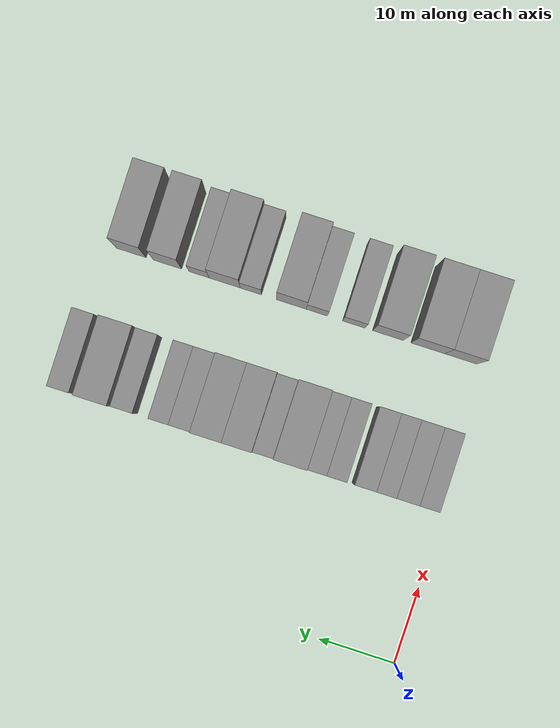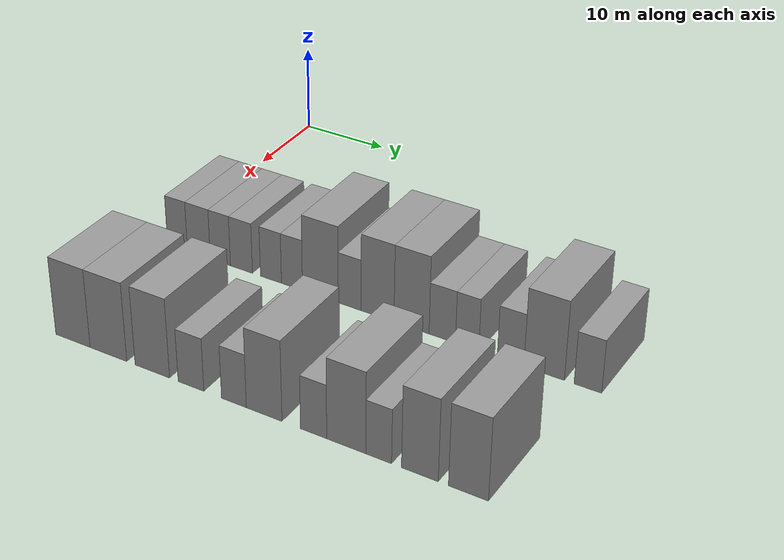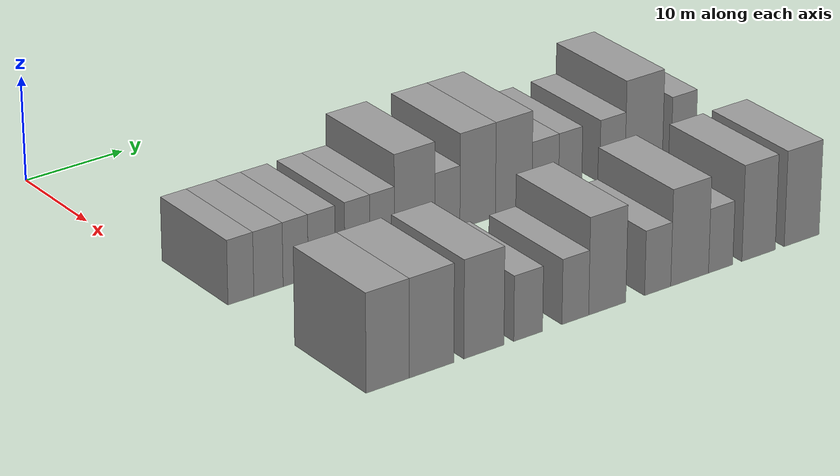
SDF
<sdf version="1.6">
 <world name="default">
  <model name="building_51">
   <static>1</static>
   <pose>25.0000 2.5211 0 0.000000 0.000000 0.000000</pose>
   <link name="link">
    <pose>0 0 3.00 0 0 0</pose>
    <collision name="collision"><geometry><box><size>10.0000 2.5867 6.0000</size></box></geometry></collision>
    <visual name="visual">
     <cast_shadows>0</cast_shadows>
     <geometry><box><size>10.0000 2.5867 6.0000</size></box></geometry>
     <material>
      <script>
       <uri>model://grey_wall/materials/scripts</uri>
       <uri>model://grey_wall/materials/textures</uri>
       <name>vrc/grey_wall</name>
      </script>
     </material>
    </visual>
   </link>
  </model>
  <model name="building_52">
   <static>1</static>
   <pose>25.0000 5.2859 0 0.000000 0.000000 0.000000</pose>
   <link name="link">
    <pose>0 0 3.00 0 0 0</pose>
    <collision name="collision"><geometry><box><size>10.0000 2.9429 6.0000</size></box></geometry></collision>
    <visual name="visual">
     <cast_shadows>0</cast_shadows>
     <geometry><box><size>10.0000 2.9429 6.0000</size></box></geometry>
     <material>
      <script>
       <uri>model://grey_wall/materials/scripts</uri>
       <uri>model://grey_wall/materials/textures</uri>
       <name>vrc/grey_wall</name>
      </script>
     </material>
    </visual>
   </link>
  </model>
  <model name="building_53">
   <static>1</static>
   <pose>25.0000 8.0348 0 0.000000 0.000000 0.000000</pose>
   <link name="link">
    <pose>0 0 3.00 0 0 0</pose>
    <collision name="collision"><geometry><box><size>10.0000 2.5548 6.0000</size></box></geometry></collision>
    <visual name="visual">
     <cast_shadows>0</cast_shadows>
     <geometry><box><size>10.0000 2.5548 6.0000</size></box></geometry>
     <material>
      <script>
       <uri>model://grey_wall/materials/scripts</uri>
       <uri>model://grey_wall/materials/textures</uri>
       <name>vrc/grey_wall</name>
      </script>
     </material>
    </visual>
   </link>
  </model>
  <model name="building_54">
   <static>1</static>
   <pose>25.0000 10.6931 0 0.000000 0.000000 0.000000</pose>
   <link name="link">
    <pose>0 0 3.00 0 0 0</pose>
    <collision name="collision"><geometry><box><size>10.0000 2.7617 6.0000</size></box></geometry></collision>
    <visual name="visual">
     <cast_shadows>0</cast_shadows>
     <geometry><box><size>10.0000 2.7617 6.0000</size></box></geometry>
     <material>
      <script>
       <uri>model://grey_wall/materials/scripts</uri>
       <uri>model://grey_wall/materials/textures</uri>
       <name>vrc/grey_wall</name>
      </script>
     </material>
    </visual>
   </link>
  </model>
  <model name="building_55">
   <static>1</static>
   <pose>25.0000 14.3630 0 0.000000 0.000000 0.000000</pose>
   <link name="link">
    <pose>0 0 3.00 0 0 0</pose>
    <collision name="collision"><geometry><box><size>10.0000 2.5780 6.0000</size></box></geometry></collision>
    <visual name="visual">
     <cast_shadows>0</cast_shadows>
     <geometry><box><size>10.0000 2.5780 6.0000</size></box></geometry>
     <material>
      <script>
       <uri>model://grey_wall/materials/scripts</uri>
       <uri>model://grey_wall/materials/textures</uri>
       <name>vrc/grey_wall</name>
      </script>
     </material>
    </visual>
   </link>
  </model>
  <model name="building_56">
   <static>1</static>
   <pose>25.0000 16.9307 0 0.000000 0.000000 0.000000</pose>
   <link name="link">
    <pose>0 0 3.00 0 0 0</pose>
    <collision name="collision"><geometry><box><size>10.0000 2.5575 6.0000</size></box></geometry></collision>
    <visual name="visual">
     <cast_shadows>0</cast_shadows>
     <geometry><box><size>10.0000 2.5575 6.0000</size></box></geometry>
     <material>
      <script>
       <uri>model://grey_wall/materials/scripts</uri>
       <uri>model://grey_wall/materials/textures</uri>
       <name>vrc/grey_wall</name>
      </script>
     </material>
    </visual>
   </link>
  </model>
  <model name="building_57">
   <static>1</static>
   <pose>25.0000 20.3381 0 0.000000 0.000000 0.000000</pose>
   <link name="link">
    <pose>0 0 4.50 0 0 0</pose>
    <collision name="collision"><geometry><box><size>10.0000 4.2573 9.0000</size></box></geometry></collision>
    <visual name="visual">
     <cast_shadows>0</cast_shadows>
     <geometry><box><size>10.0000 4.2573 9.0000</size></box></geometry>
     <material>
      <script>
       <uri>model://grey_wall/materials/scripts</uri>
       <uri>model://grey_wall/materials/textures</uri>
       <name>vrc/grey_wall</name>
      </script>
     </material>
    </visual>
   </link>
  </model>
  <model name="building_58">
   <static>1</static>
   <pose>25.0000 23.8044 0 0.000000 0.000000 0.000000</pose>
   <link name="link">
    <pose>0 0 3.00 0 0 0</pose>
    <collision name="collision"><geometry><box><size>10.0000 2.6753 6.0000</size></box></geometry></collision>
    <visual name="visual">
     <cast_shadows>0</cast_shadows>
     <geometry><box><size>10.0000 2.6753 6.0000</size></box></geometry>
     <material>
      <script>
       <uri>model://grey_wall/materials/scripts</uri>
       <uri>model://grey_wall/materials/textures</uri>
       <name>vrc/grey_wall</name>
      </script>
     </material>
    </visual>
   </link>
  </model>
  <model name="building_59">
   <static>1</static>
   <pose>25.0000 27.0463 0 0.000000 0.000000 0.000000</pose>
   <link name="link">
    <pose>0 0 4.50 0 0 0</pose>
    <collision name="collision"><geometry><box><size>10.0000 3.8084 9.0000</size></box></geometry></collision>
    <visual name="visual">
     <cast_shadows>0</cast_shadows>
     <geometry><box><size>10.0000 3.8084 9.0000</size></box></geometry>
     <material>
      <script>
       <uri>model://grey_wall/materials/scripts</uri>
       <uri>model://grey_wall/materials/textures</uri>
       <name>vrc/grey_wall</name>
      </script>
     </material>
    </visual>
   </link>
  </model>
  <model name="building_60">
   <static>1</static>
   <pose>25.0000 30.9285 0 0.000000 0.000000 0.000000</pose>
   <link name="link">
    <pose>0 0 4.50 0 0 0</pose>
    <collision name="collision"><geometry><box><size>10.0000 3.9560 9.0000</size></box></geometry></collision>
    <visual name="visual">
     <cast_shadows>0</cast_shadows>
     <geometry><box><size>10.0000 3.9560 9.0000</size></box></geometry>
     <material>
      <script>
       <uri>model://grey_wall/materials/scripts</uri>
       <uri>model://grey_wall/materials/textures</uri>
       <name>vrc/grey_wall</name>
      </script>
     </material>
    </visual>
   </link>
  </model>
  <model name="building_61">
   <static>1</static>
   <pose>25.0000 34.3720 0 0.000000 0.000000 0.000000</pose>
   <link name="link">
    <pose>0 0 3.00 0 0 0</pose>
    <collision name="collision"><geometry><box><size>10.0000 2.9311 6.0000</size></box></geometry></collision>
    <visual name="visual">
     <cast_shadows>0</cast_shadows>
     <geometry><box><size>10.0000 2.9311 6.0000</size></box></geometry>
     <material>
      <script>
       <uri>model://grey_wall/materials/scripts</uri>
       <uri>model://grey_wall/materials/textures</uri>
       <name>vrc/grey_wall</name>
      </script>
     </material>
    </visual>
   </link>
  </model>
  <model name="building_62">
   <static>1</static>
   <pose>25.0000 37.1161 0 0.000000 0.000000 0.000000</pose>
   <link name="link">
    <pose>0 0 3.00 0 0 0</pose>
    <collision name="collision"><geometry><box><size>10.0000 2.5571 6.0000</size></box></geometry></collision>
    <visual name="visual">
     <cast_shadows>0</cast_shadows>
     <geometry><box><size>10.0000 2.5571 6.0000</size></box></geometry>
     <material>
      <script>
       <uri>model://grey_wall/materials/scripts</uri>
       <uri>model://grey_wall/materials/textures</uri>
       <name>vrc/grey_wall</name>
      </script>
     </material>
    </visual>
   </link>
  </model>
  <model name="building_63">
   <static>1</static>
   <pose>25.0000 41.8110 0 0.000000 0.000000 0.000000</pose>
   <link name="link">
    <pose>0 0 3.00 0 0 0</pose>
    <collision name="collision"><geometry><box><size>10.0000 2.8327 6.0000</size></box></geometry></collision>
    <visual name="visual">
     <cast_shadows>0</cast_shadows>
     <geometry><box><size>10.0000 2.8327 6.0000</size></box></geometry>
     <material>
      <script>
       <uri>model://grey_wall/materials/scripts</uri>
       <uri>model://grey_wall/materials/textures</uri>
       <name>vrc/grey_wall</name>
      </script>
     </material>
    </visual>
   </link>
  </model>
  <model name="building_64">
   <static>1</static>
   <pose>25.0000 45.3492 0 0.000000 0.000000 0.000000</pose>
   <link name="link">
    <pose>0 0 4.50 0 0 0</pose>
    <collision name="collision"><geometry><box><size>10.0000 4.2435 9.0000</size></box></geometry></collision>
    <visual name="visual">
     <cast_shadows>0</cast_shadows>
     <geometry><box><size>10.0000 4.2435 9.0000</size></box></geometry>
     <material>
      <script>
       <uri>model://grey_wall/materials/scripts</uri>
       <uri>model://grey_wall/materials/textures</uri>
       <name>vrc/grey_wall</name>
      </script>
     </material>
    </visual>
   </link>
  </model>
  <model name="building_65">
   <static>1</static>
   <pose>25.0000 49.8806 0 0.000000 0.000000 0.000000</pose>
   <link name="link">
    <pose>0 0 3.00 0 0 0</pose>
    <collision name="collision"><geometry><box><size>10.0000 2.8192 6.0000</size></box></geometry></collision>
    <visual name="visual">
     <cast_shadows>0</cast_shadows>
     <geometry><box><size>10.0000 2.8192 6.0000</size></box></geometry>
     <material>
      <script>
       <uri>model://grey_wall/materials/scripts</uri>
       <uri>model://grey_wall/materials/textures</uri>
       <name>vrc/grey_wall</name>
      </script>
     </material>
    </visual>
   </link>
  </model>
  <model name="building_159">
   <static>1</static>
   <pose>44.0000 3.8467 0 0.000000 0.000000 0.000000</pose>
   <link name="link">
    <pose>0 0 4.50 0 0 0</pose>
    <collision name="collision"><geometry><box><size>10.0000 4.2558 9.0000</size></box></geometry></collision>
    <visual name="visual">
     <cast_shadows>0</cast_shadows>
     <geometry><box><size>10.0000 4.2558 9.0000</size></box></geometry>
     <material>
      <script>
       <uri>model://grey_wall/materials/scripts</uri>
       <uri>model://grey_wall/materials/textures</uri>
       <name>vrc/grey_wall</name>
      </script>
     </material>
    </visual>
   </link>
  </model>
  <model name="building_160">
   <static>1</static>
   <pose>44.0000 8.1950 0 0.000000 0.000000 0.000000</pose>
   <link name="link">
    <pose>0 0 4.50 0 0 0</pose>
    <collision name="collision"><geometry><box><size>10.0000 4.4410 9.0000</size></box></geometry></collision>
    <visual name="visual">
     <cast_shadows>0</cast_shadows>
     <geometry><box><size>10.0000 4.4410 9.0000</size></box></geometry>
     <material>
      <script>
       <uri>model://grey_wall/materials/scripts</uri>
       <uri>model://grey_wall/materials/textures</uri>
       <name>vrc/grey_wall</name>
      </script>
     </material>
    </visual>
   </link>
  </model>
  <model name="building_161">
   <static>1</static>
   <pose>44.0000 13.4465 0 0.000000 0.000000 0.000000</pose>
   <link name="link">
    <pose>0 0 4.50 0 0 0</pose>
    <collision name="collision"><geometry><box><size>10.0000 4.0620 9.0000</size></box></geometry></collision>
    <visual name="visual">
     <cast_shadows>0</cast_shadows>
     <geometry><box><size>10.0000 4.0620 9.0000</size></box></geometry>
     <material>
      <script>
       <uri>model://grey_wall/materials/scripts</uri>
       <uri>model://grey_wall/materials/textures</uri>
       <name>vrc/grey_wall</name>
      </script>
     </material>
    </visual>
   </link>
  </model>
  <model name="building_162">
   <static>1</static>
   <pose>44.0000 17.9593 0 0.000000 0.000000 0.000000</pose>
   <link name="link">
    <pose>0 0 3.00 0 0 0</pose>
    <collision name="collision"><geometry><box><size>10.0000 2.9635 6.0000</size></box></geometry></collision>
    <visual name="visual">
     <cast_shadows>0</cast_shadows>
     <geometry><box><size>10.0000 2.9635 6.0000</size></box></geometry>
     <material>
      <script>
       <uri>model://grey_wall/materials/scripts</uri>
       <uri>model://grey_wall/materials/textures</uri>
       <name>vrc/grey_wall</name>
      </script>
     </material>
    </visual>
   </link>
  </model>
  <model name="building_163">
   <static>1</static>
   <pose>44.0000 22.8355 0 0.000000 0.000000 0.000000</pose>
   <link name="link">
    <pose>0 0 3.00 0 0 0</pose>
    <collision name="collision"><geometry><box><size>10.0000 2.7889 6.0000</size></box></geometry></collision>
    <visual name="visual">
     <cast_shadows>0</cast_shadows>
     <geometry><box><size>10.0000 2.7889 6.0000</size></box></geometry>
     <material>
      <script>
       <uri>model://grey_wall/materials/scripts</uri>
       <uri>model://grey_wall/materials/textures</uri>
       <name>vrc/grey_wall</name>
      </script>
     </material>
    </visual>
   </link>
  </model>
  <model name="building_164">
   <static>1</static>
   <pose>44.0000 26.1865 0 0.000000 0.000000 0.000000</pose>
   <link name="link">
    <pose>0 0 4.50 0 0 0</pose>
    <collision name="collision"><geometry><box><size>10.0000 3.9131 9.0000</size></box></geometry></collision>
    <visual name="visual">
     <cast_shadows>0</cast_shadows>
     <geometry><box><size>10.0000 3.9131 9.0000</size></box></geometry>
     <material>
      <script>
       <uri>model://grey_wall/materials/scripts</uri>
       <uri>model://grey_wall/materials/textures</uri>
       <name>vrc/grey_wall</name>
      </script>
     </material>
    </visual>
   </link>
  </model>
  <model name="building_165">
   <static>1</static>
   <pose>44.0000 31.5419 0 0.000000 0.000000 0.000000</pose>
   <link name="link">
    <pose>0 0 3.00 0 0 0</pose>
    <collision name="collision"><geometry><box><size>10.0000 2.7977 6.0000</size></box></geometry></collision>
    <visual name="visual">
     <cast_shadows>0</cast_shadows>
     <geometry><box><size>10.0000 2.7977 6.0000</size></box></geometry>
     <material>
      <script>
       <uri>model://grey_wall/materials/scripts</uri>
       <uri>model://grey_wall/materials/textures</uri>
       <name>vrc/grey_wall</name>
      </script>
     </material>
    </visual>
   </link>
  </model>
  <model name="building_166">
   <static>1</static>
   <pose>44.0000 34.9837 0 0.000000 0.000000 0.000000</pose>
   <link name="link">
    <pose>0 0 4.50 0 0 0</pose>
    <collision name="collision"><geometry><box><size>10.0000 4.0860 9.0000</size></box></geometry></collision>
    <visual name="visual">
     <cast_shadows>0</cast_shadows>
     <geometry><box><size>10.0000 4.0860 9.0000</size></box></geometry>
     <material>
      <script>
       <uri>model://grey_wall/materials/scripts</uri>
       <uri>model://grey_wall/materials/textures</uri>
       <name>vrc/grey_wall</name>
      </script>
     </material>
    </visual>
   </link>
  </model>
  <model name="building_167">
   <static>1</static>
   <pose>44.0000 38.3511 0 0.000000 0.000000 0.000000</pose>
   <link name="link">
    <pose>0 0 3.00 0 0 0</pose>
    <collision name="collision"><geometry><box><size>10.0000 2.6487 6.0000</size></box></geometry></collision>
    <visual name="visual">
     <cast_shadows>0</cast_shadows>
     <geometry><box><size>10.0000 2.6487 6.0000</size></box></geometry>
     <material>
      <script>
       <uri>model://grey_wall/materials/scripts</uri>
       <uri>model://grey_wall/materials/textures</uri>
       <name>vrc/grey_wall</name>
      </script>
     </material>
    </visual>
   </link>
  </model>
  <model name="building_168">
   <static>1</static>
   <pose>44.0000 42.5205 0 0.000000 0.000000 0.000000</pose>
   <link name="link">
    <pose>0 0 4.50 0 0 0</pose>
    <collision name="collision"><geometry><box><size>10.0000 3.6902 9.0000</size></box></geometry></collision>
    <visual name="visual">
     <cast_shadows>0</cast_shadows>
     <geometry><box><size>10.0000 3.6902 9.0000</size></box></geometry>
     <material>
      <script>
       <uri>model://grey_wall/materials/scripts</uri>
       <uri>model://grey_wall/materials/textures</uri>
       <name>vrc/grey_wall</name>
      </script>
     </material>
    </visual>
   </link>
  </model>
  <model name="building_169">
   <static>1</static>
   <pose>44.0000 47.3168 0 0.000000 0.000000 0.000000</pose>
   <link name="link">
    <pose>0 0 4.50 0 0 0</pose>
    <collision name="collision"><geometry><box><size>10.0000 3.9023 9.0000</size></box></geometry></collision>
    <visual name="visual">
     <cast_shadows>0</cast_shadows>
     <geometry><box><size>10.0000 3.9023 9.0000</size></box></geometry>
     <material>
      <script>
       <uri>model://grey_wall/materials/scripts</uri>
       <uri>model://grey_wall/materials/textures</uri>
       <name>vrc/grey_wall</name>
      </script>
     </material>
    </visual>
   </link>
  </model>
 </world>
</sdf>
